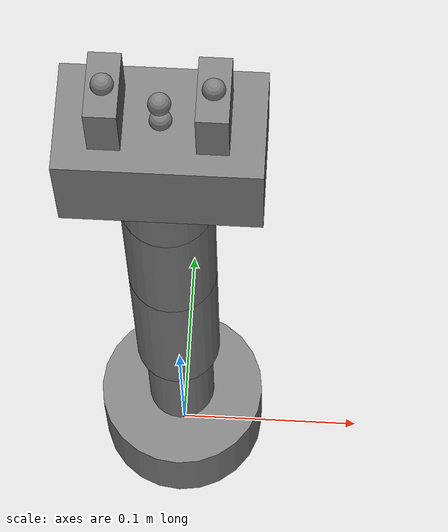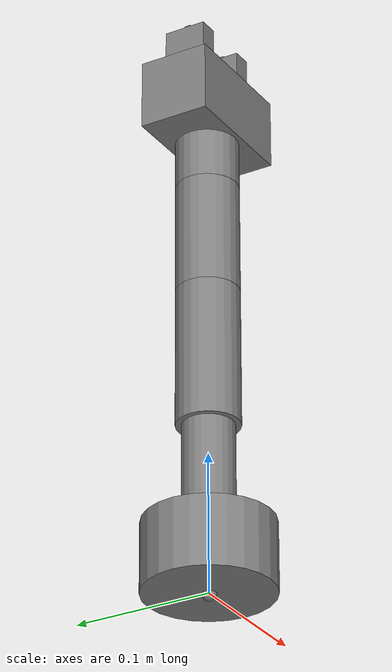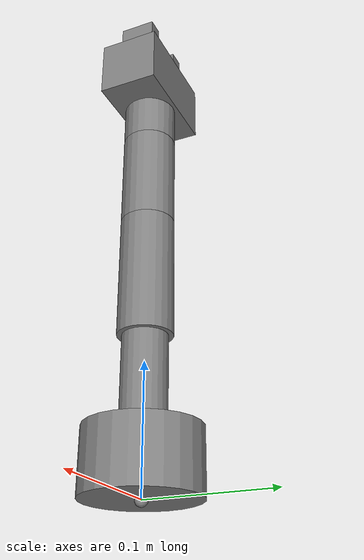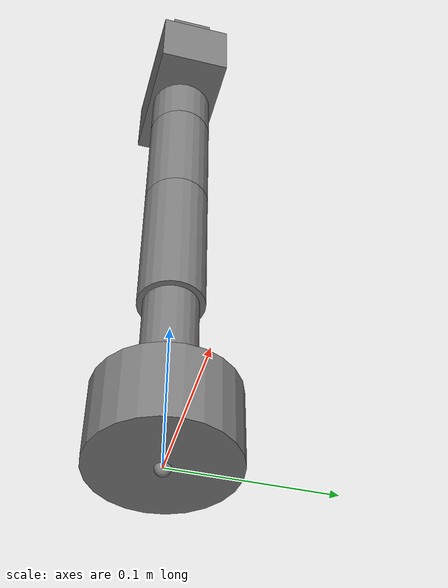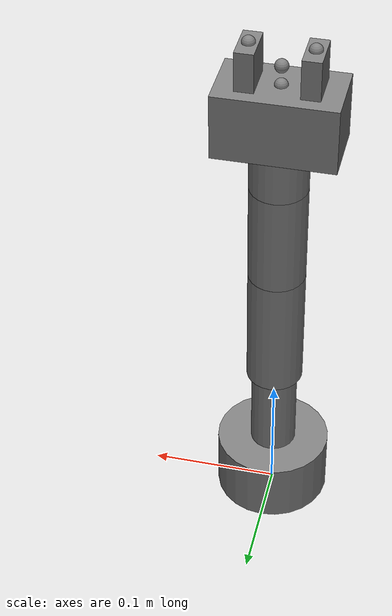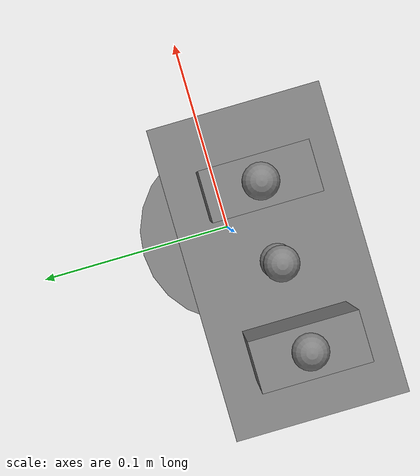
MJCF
<mujoco model="structural_body">
  <compiler angle="radian"/>

  <worldbody>
    <body name="body_0000">
      <inertial pos="0 0 0.025" quat="0.5 0.5 -0.5 0.5" mass="0.9" diaginertia="0.00091125 0.00064313 0.00064313"/>
      <geom size="0.045 0.025" pos="0 0 0.025" type="cylinder"/>
      <site name="robot_base" pos="0 0 0"/>
      <body name="body_0001" pos="0 0 0.05">
        <inertial pos="0 0 0.035" mass="0.25" diaginertia="0.00012233 0.00012233 4.05e-05"/>
        <joint name="axis_0000" pos="0 0 0" axis="0 0 1" range="-2.85 2.85" actuatorfrcrange="-14 14"/>
        <geom size="0.018 0.035" pos="0 0 0.035" type="cylinder"/>
        <body name="body_0002" pos="0 0 0.07">
          <inertial pos="0 0 0.05" mass="0.25" diaginertia="0.00023858 0.00023858 6.05e-05"/>
          <joint name="axis_0001" pos="0 0 0" axis="0 1 0" range="-2.85 2.85" actuatorfrcrange="-14 14"/>
          <geom size="0.022 0.05" pos="0 0 0.05" type="cylinder"/>
          <body name="body_0003" pos="0 0 0.1">
            <inertial pos="0 0 0.04" mass="0.25" diaginertia="0.00016358 0.00016358 6.05e-05"/>
            <joint name="axis_0002" pos="0 0 0" axis="0 1 0" range="-2.85 2.85" actuatorfrcrange="-14 14"/>
            <geom size="0.022 0.04" pos="0 0 0.04" type="cylinder"/>
            <body name="body_0004" pos="0 0 0.08">
              <inertial pos="0 0 0.0175" quat="0.5 0.5 -0.5 0.5" mass="0.25" diaginertia="6.05e-05 5.577e-05 5.577e-05"/>
              <joint name="axis_0003" pos="0 0 0" axis="0 1 0" range="-2.85 2.85" actuatorfrcrange="-14 14"/>
              <geom size="0.022 0.0175" pos="0 0 0.0175" type="cylinder"/>
              <body name="body_0005" pos="0 0 0.035">
                <inertial pos="0 0 0.025" quat="0.5 0.5 0.5 0.5" mass="0.35" diaginertia="0.00030917 0.00030917 0.00014583"/>
                <geom size="0.045 0.025 0.025" pos="0 0 0.025" type="box"/>
                <site name="body_0005_grasp_point" pos="0 0 0.065"/>
                <site name="body_0005_grasp_center" pos="0 0 0.05"/>
                <site name="body_0005_wrist" pos="0 0 0"/>
                <body name="body_0006" pos="0.023 0 0.05">
                  <inertial pos="0 0 0.015" mass="0.06" diaginertia="9e-06 5.48e-06 5.48e-06"/>
                  <joint name="axis_0005" pos="0 0 0" axis="-1 0 0" type="slide" range="0 0.015" actuatorfrcrange="-8 8"/>
                  <geom size="0.007 0.015 0.015" pos="0 0 0.015" type="box"/>
                  <site name="body_0005_tip" pos="0 0 0.03"/>
                  <site name="body_0005_contact_0" pos="0 0 0.03"/>
                </body>
                <body name="body_0007" pos="-0.023 0 0.05">
                  <inertial pos="0 0 0.015" mass="0.06" diaginertia="9e-06 5.48e-06 5.48e-06"/>
                  <joint name="axis_0006" pos="0 0 0" axis="1 0 0" type="slide" range="0 0.015" actuatorfrcrange="-8 8"/>
                  <geom size="0.007 0.015 0.015" pos="0 0 0.015" type="box"/>
                  <site name="body_0005_contact_1" pos="0 0 0.03"/>
                </body>
              </body>
            </body>
          </body>
        </body>
      </body>
    </body>
  </worldbody>

  <actuator>
    <general name="axis_0000_motor" joint="axis_0000" ctrllimited="true" ctrlrange="-14 14" forcelimited="true" forcerange="-14 14"/>
    <general name="axis_0001_motor" joint="axis_0001" ctrllimited="true" ctrlrange="-14 14" forcelimited="true" forcerange="-14 14"/>
    <general name="axis_0002_motor" joint="axis_0002" ctrllimited="true" ctrlrange="-14 14" forcelimited="true" forcerange="-14 14"/>
    <general name="axis_0003_motor" joint="axis_0003" ctrllimited="true" ctrlrange="-14 14" forcelimited="true" forcerange="-14 14"/>
    <general name="axis_0005_motor" joint="axis_0005" ctrllimited="true" ctrlrange="-8 8" forcelimited="true" forcerange="-8 8"/>
    <general name="axis_0006_motor" joint="axis_0006" ctrllimited="true" ctrlrange="-8 8" forcelimited="true" forcerange="-8 8"/>
  </actuator>
</mujoco>
